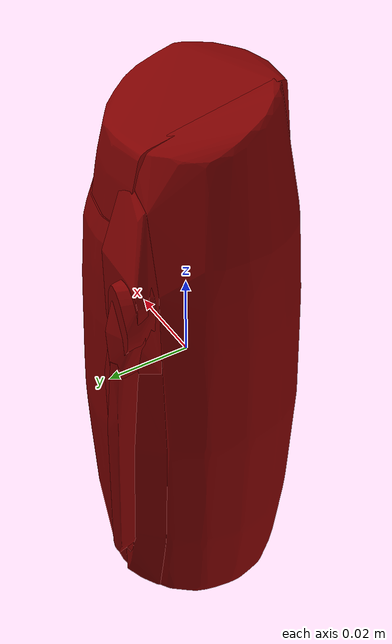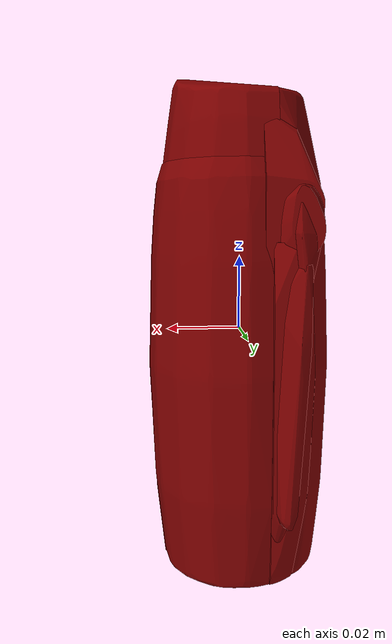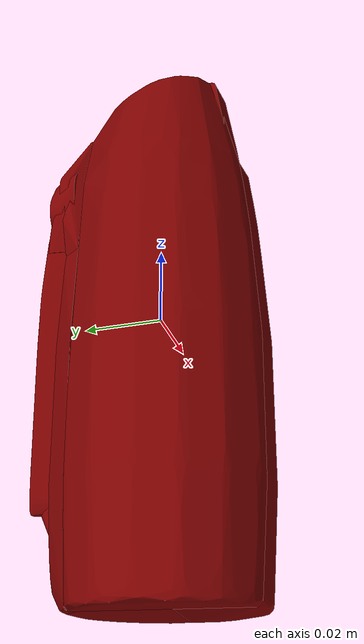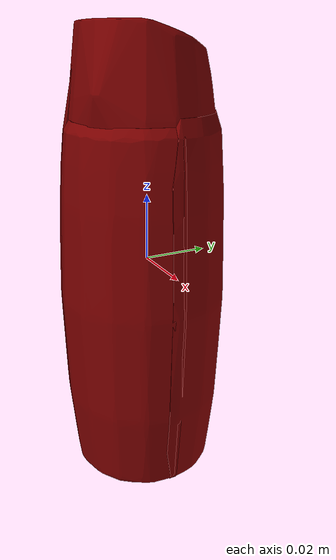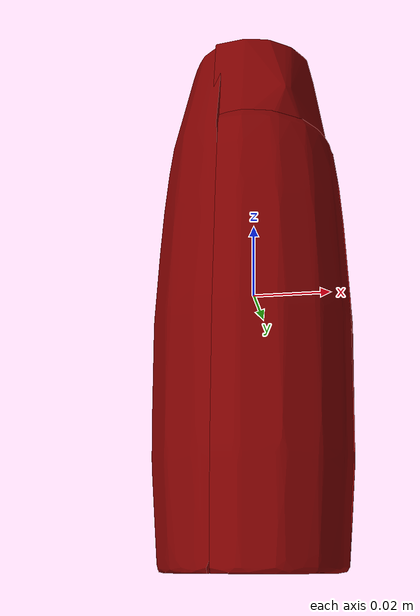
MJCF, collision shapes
<?xml version='1.0' encoding='utf-8'?>
<mujoco model="water_bottle_12">
  <asset>
    <mesh file="visual/model_normalized_0.obj" name="model_normalized_0_vis" scale="0.135 0.135 0.135" refquat="0.7071067811865475 0.0 0.0 -0.7071067811865475" />
    <mesh file="visual/model_normalized_1.obj" name="model_normalized_1_vis" scale="0.135 0.135 0.135" refquat="0.7071067811865475 0.0 0.0 -0.7071067811865475" />
    <material name="Black_plast" specular="0.5" shininess="0.15999998099999999" rgba="0.030000 0.030000 0.030000 1.0" />
    <material name="plastic_transp" specular="0.5" shininess="0.15999998099999999" rgba="0.143000 0.143000 0.143000 1.0" />
    <mesh file="collision/collision_mesh_collision_0.obj" name="water_collision_mesh_0" scale="0.135 0.135 0.135" refquat="0.7071067811865475 0.0 0.0 -0.7071067811865475" />
    <mesh file="collision/collision_mesh_collision_1.obj" name="water_collision_mesh_1" scale="0.135 0.135 0.135" refquat="0.7071067811865475 0.0 0.0 -0.7071067811865475" />
    <mesh file="collision/collision_mesh_collision_2.obj" name="water_collision_mesh_2" scale="0.135 0.135 0.135" refquat="0.7071067811865475 0.0 0.0 -0.7071067811865475" />
    <mesh file="collision/collision_mesh_collision_3.obj" name="water_collision_mesh_3" scale="0.135 0.135 0.135" refquat="0.7071067811865475 0.0 0.0 -0.7071067811865475" />
    <mesh file="collision/collision_mesh_collision_4.obj" name="water_collision_mesh_4" scale="0.135 0.135 0.135" refquat="0.7071067811865475 0.0 0.0 -0.7071067811865475" />
    <mesh file="collision/collision_mesh_collision_5.obj" name="water_collision_mesh_5" scale="0.135 0.135 0.135" refquat="0.7071067811865475 0.0 0.0 -0.7071067811865475" />
    <mesh file="collision/collision_mesh_collision_6.obj" name="water_collision_mesh_6" scale="0.135 0.135 0.135" refquat="0.7071067811865475 0.0 0.0 -0.7071067811865475" />
    <mesh file="collision/collision_mesh_collision_7.obj" name="water_collision_mesh_7" scale="0.135 0.135 0.135" refquat="0.7071067811865475 0.0 0.0 -0.7071067811865475" />
    <mesh file="collision/collision_mesh_collision_8.obj" name="water_collision_mesh_8" scale="0.135 0.135 0.135" refquat="0.7071067811865475 0.0 0.0 -0.7071067811865475" />
    <mesh file="collision/collision_mesh_collision_9.obj" name="water_collision_mesh_9" scale="0.135 0.135 0.135" refquat="0.7071067811865475 0.0 0.0 -0.7071067811865475" />
    <mesh file="collision/collision_mesh_collision_10.obj" name="water_collision_mesh_10" scale="0.135 0.135 0.135" refquat="0.7071067811865475 0.0 0.0 -0.7071067811865475" />
    </asset>
  <default>
    <default class="region">
      <geom group="1" conaffinity="0" contype="0" rgba="0 1 0 0" />
      </default>
    <default class="collision">
      <geom group="0" rgba="0.5 0 0 0.5" density="1000.0" />
      </default>
    </default>
  <worldbody>
    <body>
      <body name="object">
        <geom solimp="0.998 0.998 0.001" solref="0.001 1" density="100" friction="0.95 0.3 0.1" type="mesh" mesh="model_normalized_0_vis" conaffinity="0" contype="0" group="1" material="Black_plast" />
        <geom solimp="0.998 0.998 0.001" solref="0.001 1" density="100" friction="0.95 0.3 0.1" type="mesh" mesh="model_normalized_1_vis" conaffinity="0" contype="0" group="1" material="plastic_transp" />
        <geom class="region" name="reg_bbox" type="box" pos="2.5936199999998662e-05 0.0005050201500000015 0.0" size="0.0238126797 0.02620763235 0.0675" />
        <geom mesh="water_collision_mesh_0" type="mesh" class="collision" />
        <geom mesh="water_collision_mesh_1" type="mesh" class="collision" />
        <geom mesh="water_collision_mesh_2" type="mesh" class="collision" />
        <geom mesh="water_collision_mesh_3" type="mesh" class="collision" />
        <geom mesh="water_collision_mesh_4" type="mesh" class="collision" />
        <geom mesh="water_collision_mesh_5" type="mesh" class="collision" />
        <geom mesh="water_collision_mesh_6" type="mesh" class="collision" />
        <geom mesh="water_collision_mesh_7" type="mesh" class="collision" />
        <geom mesh="water_collision_mesh_8" type="mesh" class="collision" />
        <geom mesh="water_collision_mesh_9" type="mesh" class="collision" />
        <geom mesh="water_collision_mesh_10" type="mesh" class="collision" />
        </body>
      </body>
    </worldbody>
  </mujoco>
